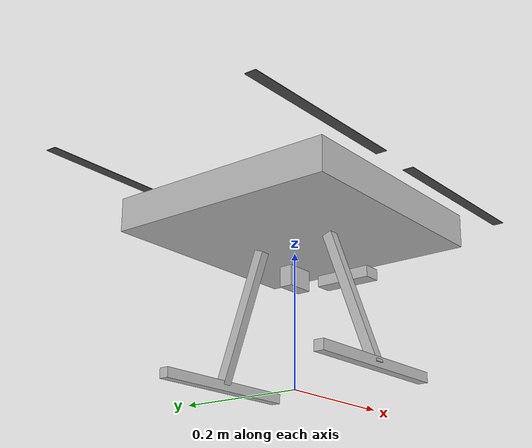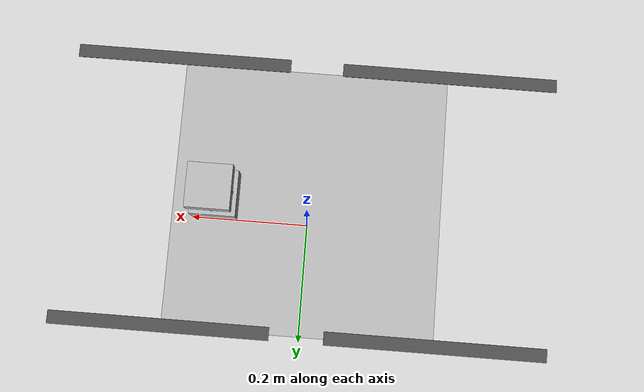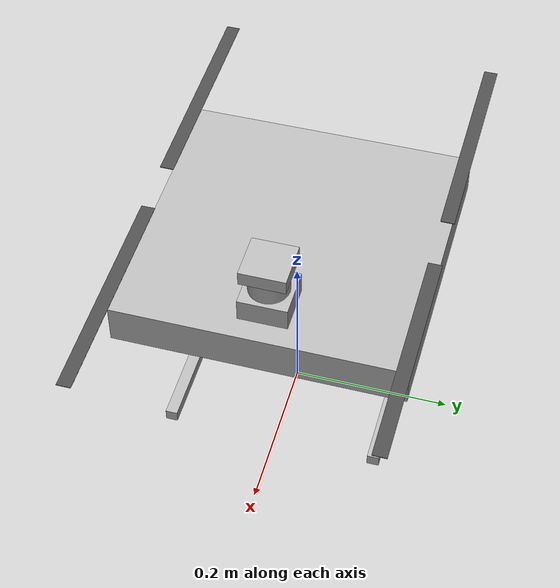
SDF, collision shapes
<sdf version='1.8'>
  <model name='x500_lidar_2d'>
    <self_collide>false</self_collide>
    <frame name='_merged__x500__model__' attached_to='base_link'>
      <pose relative_to='__model__'>0 0 0 0 0 0</pose>
    </frame>
    <frame name='_merged__x500_base__model__' attached_to='base_link'>
      <pose relative_to='_merged__x500__model__'>0 0 0.23999999999999999 0 0 0</pose>
    </frame>
    <link name='base_link'>
      <inertial>
        <mass>2</mass>
        <inertia>
          <ixx>0.021666666666666671</ixx>
          <ixy>0</ixy>
          <ixz>0</ixz>
          <iyy>0.021666666666666671</iyy>
          <iyz>0</iyz>
          <izz>0.040000000000000008</izz>
        </inertia>
      </inertial>
      <gravity>true</gravity>
      <velocity_decay/>
      <visual name='base_link_visual'>
        <pose>0 0 0.025000000000000001 0 0 -3.1415926531795866</pose>
        <geometry>
          <mesh>
            <scale>1 1 1</scale>
            <uri>model://x500_base/meshes/NXP-HGD-CF.dae</uri>
          </mesh>
        </geometry>
      </visual>
      <visual name='5010_motor_base_0'>
        <pose>0.17399999999999999 0.17399999999999999 0.032000000000000001 0 0 -0.45000000000000001</pose>
        <geometry>
          <mesh>
            <scale>1 1 1</scale>
            <uri>model://x500_base/meshes/5010Base.dae</uri>
          </mesh>
        </geometry>
      </visual>
      <visual name='5010_motor_base_1'>
        <pose>-0.17399999999999999 0.17399999999999999 0.032000000000000001 0 0 -0.45000000000000001</pose>
        <geometry>
          <mesh>
            <scale>1 1 1</scale>
            <uri>model://x500_base/meshes/5010Base.dae</uri>
          </mesh>
        </geometry>
      </visual>
      <visual name='5010_motor_base_2'>
        <pose>0.17399999999999999 -0.17399999999999999 0.032000000000000001 0 0 -0.45000000000000001</pose>
        <geometry>
          <mesh>
            <scale>1 1 1</scale>
            <uri>model://x500_base/meshes/5010Base.dae</uri>
          </mesh>
        </geometry>
      </visual>
      <visual name='5010_motor_base_3'>
        <pose>-0.17399999999999999 -0.17399999999999999 0.032000000000000001 0 0 -0.45000000000000001</pose>
        <geometry>
          <mesh>
            <scale>1 1 1</scale>
            <uri>model://x500_base/meshes/5010Base.dae</uri>
          </mesh>
        </geometry>
      </visual>

      <collision name='base_link_collision_0'>
        <pose>0 0 0.0070000000000000001 0 0 0</pose>
        <geometry>
          <box>
            <size>0.35355339059327373 0.35355339059327373 0.050000000000000003</size>
          </box>
        </geometry>
        <surface>
          <contact>
            <ode>
              <min_depth>0.001</min_depth>
              <max_vel>0</max_vel>
            </ode>
          </contact>
          <friction>
            <ode/>
          </friction>
        </surface>
      </collision>
      <collision name='base_link_collision_1'>
        <pose>0 -0.098000000000000004 -0.123 -0.34999999999999998 0 0</pose>
        <geometry>
          <box>
            <size>0.014999999999999999 0.014999999999999999 0.20999999999999999</size>
          </box>
        </geometry>
        <surface>
          <contact>
            <ode>
              <min_depth>0.001</min_depth>
              <max_vel>0</max_vel>
            </ode>
          </contact>
          <friction>
            <ode/>
          </friction>
        </surface>
      </collision>
      <collision name='base_link_collision_2'>
        <pose>0 0.098000000000000004 -0.123 0.34999999999999998 0 0</pose>
        <geometry>
          <box>
            <size>0.014999999999999999 0.014999999999999999 0.20999999999999999</size>
          </box>
        </geometry>
        <surface>
          <contact>
            <ode>
              <min_depth>0.001</min_depth>
              <max_vel>0</max_vel>
            </ode>
          </contact>
          <friction>
            <ode/>
          </friction>
        </surface>
      </collision>
      <collision name='base_link_collision_3'>
        <pose>0 -0.13200000000000001 -0.2195 0 0 0</pose>
        <geometry>
          <box>
            <size>0.25 0.014999999999999999 0.014999999999999999</size>
          </box>
        </geometry>
        <surface>
          <contact>
            <ode>
              <min_depth>0.001</min_depth>
              <max_vel>0</max_vel>
            </ode>
          </contact>
          <friction>
            <ode/>
          </friction>
        </surface>
      </collision>
      <collision name='base_link_collision_4'>
        <pose>0 0.13200000000000001 -0.2195 0 0 0</pose>
        <geometry>
          <box>
            <size>0.25 0.014999999999999999 0.014999999999999999</size>
          </box>
        </geometry>
        <surface>
          <contact>
            <ode>
              <min_depth>0.001</min_depth>
              <max_vel>0</max_vel>
            </ode>
          </contact>
          <friction>
            <ode/>
          </friction>
        </surface>
      </collision>
      <sensor name='air_pressure_sensor' type='air_pressure'>
        <always_on>true</always_on>
        <update_rate>50</update_rate>
        <air_pressure>
          <pressure>
            <noise type='gaussian'>
              <mean>0</mean>
              <stddev>3</stddev>
            </noise>
          </pressure>
        </air_pressure>
      </sensor>
      <sensor name='magnetometer_sensor' type='magnetometer'>
        <always_on>true</always_on>
        <update_rate>100</update_rate>
        <magnetometer>
          <x>
            <noise type='gaussian'>
              <stddev>0.0001</stddev>
            </noise>
          </x>
          <y>
            <noise type='gaussian'>
              <stddev>0.0001</stddev>
            </noise>
          </y>
          <z>
            <noise type='gaussian'>
              <stddev>0.0001</stddev>
            </noise>
          </z>
        </magnetometer>
      </sensor>
      <sensor name='imu_sensor' type='imu'>
        <always_on>true</always_on>
        <update_rate>250</update_rate>
        <imu>
          <angular_velocity>
            <x>
              <noise type='gaussian'>
                <mean>0</mean>
                <stddev>0.00087266459999999998</stddev>
              </noise>
            </x>
            <y>
              <noise type='gaussian'>
                <mean>0</mean>
                <stddev>0.00087266459999999998</stddev>
              </noise>
            </y>
            <z>
              <noise type='gaussian'>
                <mean>0</mean>
                <stddev>0.00087266459999999998</stddev>
              </noise>
            </z>
          </angular_velocity>
          <linear_acceleration>
            <x>
              <noise type='gaussian'>
                <mean>0</mean>
                <stddev>0.0063699999999999998</stddev>
              </noise>
            </x>
            <y>
              <noise type='gaussian'>
                <mean>0</mean>
                <stddev>0.0063699999999999998</stddev>
              </noise>
            </y>
            <z>
              <noise type='gaussian'>
                <mean>0</mean>
                <stddev>0.0068599999999999998</stddev>
              </noise>
            </z>
          </linear_acceleration>
        </imu>
      </sensor>
      <sensor name='navsat_sensor' type='navsat'>
        <always_on>true</always_on>
        <update_rate>30</update_rate>
        <gps/>
      </sensor>
      <pose relative_to='_merged__x500_base__model__'>0 0 0 0 0 0</pose>
    </link>
    <link name='rotor_0'>
      <gravity>true</gravity>
      <self_collide>false</self_collide>
      <velocity_decay/>
      <pose relative_to='_merged__x500_base__model__'>0.17399999999999999 -0.17399999999999999 0.059999999999999998 0 0 0</pose>
      <inertial>
        <mass>0.016076923076923075</mass>
        <inertia>
          <ixx>3.8464910483993325e-07</ixx>
          <iyy>2.6115851691700804e-05</iyy>
          <izz>2.6498582347140039e-05</izz>
          <ixy>0</ixy>
          <ixz>0</ixz>
          <iyz>0</iyz>
        </inertia>
      </inertial>
      <visual name='rotor_0_visual'>
        <pose>-0.021999999999999999 -0.14638461538461536 -0.016 0 0 0</pose>
        <geometry>
          <mesh>
            <scale>0.84615384615384615 0.84615384615384615 0.84615384615384615</scale>
            <uri>model://x500_base/meshes/1345_prop_ccw.stl</uri>
          </mesh>
        </geometry>
        <material>
          <script>
            <name>Gazebo/DarkGrey</name>
            <uri>file://media/materials/scripts/gazebo.material</uri>
          </script>
        </material>
      </visual>
      <visual name='rotor_0_visual_motor_bell'>
        <pose>0 0 -0.032000000000000001 0 0 0</pose>
        <geometry>
          <mesh>
            <scale>1 1 1</scale>
            <uri>model://x500_base/meshes/5010Bell.dae</uri>
          </mesh>
        </geometry>
      </visual>
      <collision name='rotor_0_collision'>
        <pose>0 0 0 0 0 0</pose>
        <geometry>
          <box>
            <size>0.27923076923076923 0.016923076923076923 0.0008461538461538462</size>
          </box>
        </geometry>
        <surface>
          <contact>
            <ode>
              <min_depth>0.001</min_depth>
              <max_vel>0</max_vel>
            </ode>
          </contact>
          <friction>
            <ode/>
          </friction>
        </surface>
      </collision>
    </link>
    <joint name='rotor_0_joint' type='revolute'>
      <parent>base_link</parent>
      <child>rotor_0</child>
      <axis>
        <xyz>0 0 1</xyz>
        <limit>
          <lower>-10000000000000000</lower>
          <upper>10000000000000000</upper>
        </limit>
        <dynamics>
          <spring_reference>0</spring_reference>
          <spring_stiffness>0</spring_stiffness>
        </dynamics>
      </axis>
    </joint>
    <link name='rotor_1'>
      <gravity>true</gravity>
      <self_collide>false</self_collide>
      <velocity_decay/>
      <pose relative_to='_merged__x500_base__model__'>-0.17399999999999999 0.17399999999999999 0.059999999999999998 0 0 0</pose>
      <inertial>
        <mass>0.016076923076923075</mass>
        <inertia>
          <ixx>3.8464910483993325e-07</ixx>
          <iyy>2.6115851691700804e-05</iyy>
          <izz>2.6498582347140039e-05</izz>
          <ixy>0</ixy>
          <ixz>0</ixz>
          <iyz>0</iyz>
        </inertia>
      </inertial>
      <visual name='rotor_1_visual'>
        <pose>-0.021999999999999999 -0.14638461538461536 -0.016 0 0 0</pose>
        <geometry>
          <mesh>
            <scale>0.84615384615384615 0.84615384615384615 0.84615384615384615</scale>
            <uri>model://x500_base/meshes/1345_prop_ccw.stl</uri>
          </mesh>
        </geometry>
        <material>
          <script>
            <name>Gazebo/DarkGrey</name>
            <uri>file://media/materials/scripts/gazebo.material</uri>
          </script>
        </material>
      </visual>
      <visual name='rotor_1_visual_motor_top'>
        <pose>0 0 -0.032000000000000001 0 0 0</pose>
        <geometry>
          <mesh>
            <scale>1 1 1</scale>
            <uri>model://x500_base/meshes/5010Bell.dae</uri>
          </mesh>
        </geometry>
      </visual>
      <collision name='rotor_1_collision'>
        <pose>0 0 0 0 0 0</pose>
        <geometry>
          <box>
            <size>0.27923076923076923 0.016923076923076923 0.0008461538461538462</size>
          </box>
        </geometry>
        <surface>
          <contact>
            <ode>
              <min_depth>0.001</min_depth>
              <max_vel>0</max_vel>
            </ode>
          </contact>
          <friction>
            <ode/>
          </friction>
        </surface>
      </collision>
    </link>
    <joint name='rotor_1_joint' type='revolute'>
      <parent>base_link</parent>
      <child>rotor_1</child>
      <axis>
        <xyz>0 0 1</xyz>
        <limit>
          <lower>-10000000000000000</lower>
          <upper>10000000000000000</upper>
        </limit>
        <dynamics>
          <spring_reference>0</spring_reference>
          <spring_stiffness>0</spring_stiffness>
        </dynamics>
      </axis>
    </joint>
    <link name='rotor_2'>
      <gravity>true</gravity>
      <self_collide>false</self_collide>
      <velocity_decay/>
      <pose relative_to='_merged__x500_base__model__'>0.17399999999999999 0.17399999999999999 0.059999999999999998 0 0 0</pose>
      <inertial>
        <mass>0.016076923076923075</mass>
        <inertia>
          <ixx>3.8464910483993325e-07</ixx>
          <iyy>2.6115851691700804e-05</iyy>
          <izz>2.6498582347140039e-05</izz>
          <ixy>0</ixy>
          <ixz>0</ixz>
          <iyz>0</iyz>
        </inertia>
      </inertial>
      <visual name='rotor_2_visual'>
        <pose>-0.021999999999999999 -0.14638461538461536 -0.016 0 0 0</pose>
        <geometry>
          <mesh>
            <scale>0.84615384615384615 0.84615384615384615 0.84615384615384615</scale>
            <uri>model://x500_base/meshes/1345_prop_cw.stl</uri>
          </mesh>
        </geometry>
        <material>
          <script>
            <name>Gazebo/DarkGrey</name>
            <uri>file://media/materials/scripts/gazebo.material</uri>
          </script>
        </material>
      </visual>
      <visual name='rotor_2_visual_motor_top'>
        <pose>0 0 -0.032000000000000001 0 0 0</pose>
        <geometry>
          <mesh>
            <scale>1 1 1</scale>
            <uri>model://x500_base/meshes/5010Bell.dae</uri>
          </mesh>
        </geometry>
      </visual>
      <collision name='rotor_2_collision'>
        <pose>0 0 0 0 0 0</pose>
        <geometry>
          <box>
            <size>0.27923076923076923 0.016923076923076923 0.0008461538461538462</size>
          </box>
        </geometry>
        <surface>
          <contact>
            <ode>
              <min_depth>0.001</min_depth>
              <max_vel>0</max_vel>
            </ode>
          </contact>
          <friction>
            <ode/>
          </friction>
        </surface>
      </collision>
    </link>
    <joint name='rotor_2_joint' type='revolute'>
      <parent>base_link</parent>
      <child>rotor_2</child>
      <axis>
        <xyz>0 0 1</xyz>
        <limit>
          <lower>-10000000000000000</lower>
          <upper>10000000000000000</upper>
        </limit>
        <dynamics>
          <spring_reference>0</spring_reference>
          <spring_stiffness>0</spring_stiffness>
        </dynamics>
      </axis>
    </joint>
    <link name='rotor_3'>
      <gravity>true</gravity>
      <self_collide>false</self_collide>
      <velocity_decay/>
      <pose relative_to='_merged__x500_base__model__'>-0.17399999999999999 -0.17399999999999999 0.059999999999999998 0 0 0</pose>
      <inertial>
        <mass>0.016076923076923075</mass>
        <inertia>
          <ixx>3.8464910483993325e-07</ixx>
          <iyy>2.6115851691700804e-05</iyy>
          <izz>2.6498582347140039e-05</izz>
          <ixy>0</ixy>
          <ixz>0</ixz>
          <iyz>0</iyz>
        </inertia>
      </inertial>
      <visual name='rotor_3_visual'>
        <pose>-0.021999999999999999 -0.14638461538461536 -0.016 0 0 0</pose>
        <geometry>
          <mesh>
            <scale>0.84615384615384615 0.84615384615384615 0.84615384615384615</scale>
            <uri>model://x500_base/meshes/1345_prop_cw.stl</uri>
          </mesh>
        </geometry>
        <material>
          <script>
            <name>Gazebo/DarkGrey</name>
            <uri>file://media/materials/scripts/gazebo.material</uri>
          </script>
        </material>
      </visual>
      <visual name='rotor_3_visual_motor_top'>
        <pose>0 0 -0.032000000000000001 0 0 0</pose>
        <geometry>
          <mesh>
            <scale>1 1 1</scale>
            <uri>model://x500_base/meshes/5010Bell.dae</uri>
          </mesh>
        </geometry>
      </visual>
      <collision name='rotor_3_collision'>
        <pose>0 0 0 0 0 0</pose>
        <geometry>
          <box>
            <size>0.27923076923076923 0.016923076923076923 0.0008461538461538462</size>
          </box>
        </geometry>
        <surface>
          <contact>
            <ode>
              <min_depth>0.001</min_depth>
              <max_vel>0</max_vel>
            </ode>
          </contact>
          <friction>
            <ode/>
          </friction>
        </surface>
      </collision>
    </link>
    <joint name='rotor_3_joint' type='revolute'>
      <parent>base_link</parent>
      <child>rotor_3</child>
      <axis>
        <xyz>0 0 1</xyz>
        <limit>
          <lower>-10000000000000000</lower>
          <upper>10000000000000000</upper>
        </limit>
        <dynamics>
          <spring_reference>0</spring_reference>
          <spring_stiffness>0</spring_stiffness>
        </dynamics>
      </axis>
    </joint>
    <plugin name='gz::sim::systems::MulticopterMotorModel' filename='gz-sim-multicopter-motor-model-system'>
      <jointName>rotor_0_joint</jointName>
      <linkName>rotor_0</linkName>
      <turningDirection>ccw</turningDirection>
      <timeConstantUp>0.0125</timeConstantUp>
      <timeConstantDown>0.025</timeConstantDown>
      <maxRotVelocity>1000.0</maxRotVelocity>
      <motorConstant>8.54858e-06</motorConstant>
      <momentConstant>0.016</momentConstant>
      <commandSubTopic>command/motor_speed</commandSubTopic>
      <motorNumber>0</motorNumber>
      <rotorDragCoefficient>8.06428e-05</rotorDragCoefficient>
      <rollingMomentCoefficient>1e-06</rollingMomentCoefficient>
      <rotorVelocitySlowdownSim>10</rotorVelocitySlowdownSim>
      <motorType>velocity</motorType>
    </plugin>
    <plugin name='gz::sim::systems::MulticopterMotorModel' filename='gz-sim-multicopter-motor-model-system'>
      <jointName>rotor_1_joint</jointName>
      <linkName>rotor_1</linkName>
      <turningDirection>ccw</turningDirection>
      <timeConstantUp>0.0125</timeConstantUp>
      <timeConstantDown>0.025</timeConstantDown>
      <maxRotVelocity>1000.0</maxRotVelocity>
      <motorConstant>8.54858e-06</motorConstant>
      <momentConstant>0.016</momentConstant>
      <commandSubTopic>command/motor_speed</commandSubTopic>
      <motorNumber>1</motorNumber>
      <rotorDragCoefficient>8.06428e-05</rotorDragCoefficient>
      <rollingMomentCoefficient>1e-06</rollingMomentCoefficient>
      <rotorVelocitySlowdownSim>10</rotorVelocitySlowdownSim>
      <motorType>velocity</motorType>
    </plugin>
    <plugin name='gz::sim::systems::MulticopterMotorModel' filename='gz-sim-multicopter-motor-model-system'>
      <jointName>rotor_2_joint</jointName>
      <linkName>rotor_2</linkName>
      <turningDirection>cw</turningDirection>
      <timeConstantUp>0.0125</timeConstantUp>
      <timeConstantDown>0.025</timeConstantDown>
      <maxRotVelocity>1000.0</maxRotVelocity>
      <motorConstant>8.54858e-06</motorConstant>
      <momentConstant>0.016</momentConstant>
      <commandSubTopic>command/motor_speed</commandSubTopic>
      <motorNumber>2</motorNumber>
      <rotorDragCoefficient>8.06428e-05</rotorDragCoefficient>
      <rollingMomentCoefficient>1e-06</rollingMomentCoefficient>
      <rotorVelocitySlowdownSim>10</rotorVelocitySlowdownSim>
      <motorType>velocity</motorType>
    </plugin>
    <plugin name='gz::sim::systems::MulticopterMotorModel' filename='gz-sim-multicopter-motor-model-system'>
      <jointName>rotor_3_joint</jointName>
      <linkName>rotor_3</linkName>
      <turningDirection>cw</turningDirection>
      <timeConstantUp>0.0125</timeConstantUp>
      <timeConstantDown>0.025</timeConstantDown>
      <maxRotVelocity>1000.0</maxRotVelocity>
      <motorConstant>8.54858e-06</motorConstant>
      <momentConstant>0.016</momentConstant>
      <commandSubTopic>command/motor_speed</commandSubTopic>
      <motorNumber>3</motorNumber>
      <rotorDragCoefficient>8.06428e-05</rotorDragCoefficient>
      <rollingMomentCoefficient>1e-06</rollingMomentCoefficient>
      <rotorVelocitySlowdownSim>10</rotorVelocitySlowdownSim>
      <motorType>velocity</motorType>
    </plugin>
    <frame name='_merged__lidar_2d_v2__model__' attached_to='link'>
      <pose relative_to='__model__'>0.12 0 0.26000000000000001 0 0 0</pose>
    </frame>
    <link name='link'>
      <pose relative_to='_merged__lidar_2d_v2__model__'>0 0 0 0 0 0</pose>
      <inertial>
        <pose>0 0 0.043499999999999997 0 0 0</pose>
        <mass>0.37</mass>
        <inertia>
          <ixx>0.00034437749999999994</ixx>
          <ixy>0</ixy>
          <ixz>0</ixz>
          <iyy>0.00034437749999999994</iyy>
          <iyz>0</iyz>
          <izz>0.00022199999999999998</izz>
        </inertia>
      </inertial>
      <collision name='collision_base'>
        <pose>0 0 0.020500000000000001 0 0 0</pose>
        <geometry>
          <box>
            <size>0.059999999999999998 0.059999999999999998 0.041000000000000002</size>
          </box>
        </geometry>
      </collision>
      <collision name='collision_mid'>
        <pose>0 0 0.055 0 0 0</pose>
        <geometry>
          <cylinder>
            <radius>0.025000000000000001</radius>
            <length>0.028000000000000001</length>
          </cylinder>
        </geometry>
      </collision>
      <collision name='collision_top'>
        <pose>0 0 0.078 0 0 0</pose>
        <geometry>
          <box>
            <size>0.056000000000000001 0.056000000000000001 0.017999999999999999</size>
          </box>
        </geometry>
      </collision>
      <visual name='visual'>
        <geometry>
          <mesh>
            <uri>model://lidar_2d_v2/meshes/lidar_2d_v2.dae</uri>
          </mesh>
        </geometry>
      </visual>
      <sensor name='lidar_2d_v2' type='gpu_lidar'>
        <pose>0 0 0.055 0 0 0</pose>

        <ray>
          <scan>
            <horizontal>
              <samples>720</samples>
              <resolution>1</resolution>
              <min_angle>-3.1415920000000002</min_angle>
              <max_angle>3.1415920000000002</max_angle>
            </horizontal>
          </scan>
          <range>
            <min>0.10000000000000001</min>
            <max>15</max>
            <resolution>0.01</resolution>
          </range>
          <noise>
            <type>gaussian</type>
            <mean>0</mean>
            <stddev>0.001</stddev>
          </noise>
        </ray>
        <topic>scan</topic>
        <always_on>true</always_on>
        <update_rate>30</update_rate>
        <visualize>true</visualize>
      </sensor>
    </link>
    <joint name='LidarJoint' type='fixed'>
      <parent>base_link</parent>
      <child>link</child>
      <pose relative_to='base_link'>-0.10000000000000001 0 0.26000000000000001 0 0 0</pose>
    </joint>
    <frame name='_merged__OakD-Lite__model__' attached_to='camera_link'>
      <pose relative_to='__model__'>0.12 0.029999999999999999 0.20000000000000001 0 1.5707963009853283 0</pose>
    </frame>
    <link name='camera_link'>
      <inertial>
        <pose>0.0035799999999999998 -0.029999999999999999 0.014 0 0 0</pose>
        <mass>0.060999999999999999</mass>
        <inertia>
          <ixx>4.60804e-05</ixx>
          <ixy>0</ixy>
          <ixz>0</ixz>
          <iyy>5.5420999999999998e-06</iyy>
          <iyz>0</iyz>
          <izz>4.3651900000000001e-05</izz>
        </inertia>
      </inertial>
      <visual name='OakD-Lite/visual'>
        <pose>0 0 0 0 0 0</pose>
        <geometry>
          <mesh>
            <scale>1 1 1</scale>
            <uri>model://OakD-Lite/meshes/OakDLite.dae</uri>
          </mesh>
        </geometry>
      </visual>
      <collision name='OakD-Lite/collision'>
        <pose>0.0035799999999999998 -0.029999999999999999 0.014 0 0 0</pose>
        <geometry>
          <box>
            <size>0.017500000000000002 0.090999999999999998 0.028000000000000001</size>
          </box>
        </geometry>
      </collision>
      <sensor name='IMX214' type='camera'>
        <pose>0.012330000000000001 -0.029999999999999999 0.018780000000000002 0 0 0</pose>
        <camera>
          <horizontal_fov>1.204</horizontal_fov>
          <image>
            <width>1920</width>
            <height>1080</height>
          </image>
          <clip>
            <near>0.10000000000000001</near>
            <far>100</far>
          </clip>
        </camera>
        <always_on>true</always_on>
        <update_rate>30</update_rate>
        <visualize>true</visualize>
      </sensor>
      <sensor name='StereoOV7251' type='depth_camera'>
        <pose>0.012330000000000001 -0.029999999999999999 0.018780000000000002 0 0 0</pose>
        <camera>
          <horizontal_fov>1.274</horizontal_fov>
          <image>
            <width>640</width>
            <height>480</height>
            <format>R_FLOAT32</format>
          </image>
          <clip>
            <near>0.20000000000000001</near>
            <far>19.100000000000001</far>
          </clip>
        </camera>
        <always_on>true</always_on>
        <update_rate>30</update_rate>
        <visualize>true</visualize>
        <topic>depth_camera</topic>
      </sensor>
      <gravity>true</gravity>
      <velocity_decay/>
      <pose relative_to='_merged__OakD-Lite__model__'>0 0 0 0 0 0</pose>
    </link>
    <joint name='CameraJoint' type='fixed'>
      <parent>base_link</parent>
      <child>camera_link</child>
      <pose relative_to='base_link'>0.12 0.029999999999999999 0.20000000000000001 0 1.5707963009853283 0</pose>
    </joint>
    <frame name='_merged__LW20__model__' attached_to='lw20_link'>
      <pose relative_to='base_link'>0 0 -0.079000000000000001 0 1.5700000000004057 0</pose>
    </frame>
    <link name='lw20_link'>
      <pose relative_to='_merged__LW20__model__'>0 0 0 0 0 0</pose>
      <inertial>
        <pose>0 0 0 0 0 0</pose>
        <mass>0.02</mass>
        <inertia>
          <ixx>3.9999999999999998e-06</ixx>
          <ixy>0</ixy>
          <ixz>0</ixz>
          <iyy>3.9999999999999998e-06</iyy>
          <iyz>0</iyz>
          <izz>1.9999999999999999e-06</izz>
        </inertia>
      </inertial>
      <collision name='collision_base'>
        <pose>0 0 0 0 0 0</pose>
        <geometry>
          <box>
            <size>0.029999999999999999 0.02 0.042999999999999997</size>
          </box>
        </geometry>
      </collision>
      <visual name='visual'>
        <geometry>
          <mesh>
            <uri>model://LW20/meshes/LW20.dae</uri>
          </mesh>
        </geometry>
      </visual>
    </link>
    <joint name='lidar_model_joint' type='fixed'>
      <parent>base_link</parent>
      <child>lw20_link</child>
      <pose relative_to='base_link'>0 0 0 0 0 0</pose>
    </joint>
    <joint name='lidar_sensor_joint' type='fixed'>
      <parent>base_link</parent>
      <child>lidar_sensor_link</child>
    </joint>
    <link name='lidar_sensor_link'>
      <pose relative_to='base_link'>0 0 -0.050000000000000003 0 1.5700000000001271 0</pose>
      <inertial>
        <mass>0.001</mass>
        <inertia>
          <ixx>1.0000000000000001e-05</ixx>
          <iyy>1.0000000000000001e-05</iyy>
          <izz>1.0000000000000001e-05</izz>
          <ixy>0</ixy>
          <ixz>0</ixz>
          <iyz>0</iyz>
        </inertia>
      </inertial>
      <sensor name='lidar' type='gpu_lidar'>
        <pose>0 0 0 3.1400000000000001 0 0</pose>
        <update_rate>50</update_rate>
        <topic>/distance_sensor</topic>
        <ray>
          <scan>
            <horizontal>
              <samples>1</samples>
              <resolution>1</resolution>
              <min_angle>0</min_angle>
              <max_angle>0</max_angle>
            </horizontal>
            <vertical>
              <samples>1</samples>
              <resolution>1</resolution>
              <min_angle>0</min_angle>
              <max_angle>0</max_angle>
            </vertical>
          </scan>
          <range>
            <min>0.10000000000000001</min>
            <max>10</max>
            <resolution>0.01</resolution>
          </range>
        </ray>
        <always_on>true</always_on>
        <visualize>true</visualize>
        <gz_frame_id>x500_lidar_2d/lidar_sensor_link</gz_frame_id>
      </sensor>
    </link>
  </model>
</sdf>
